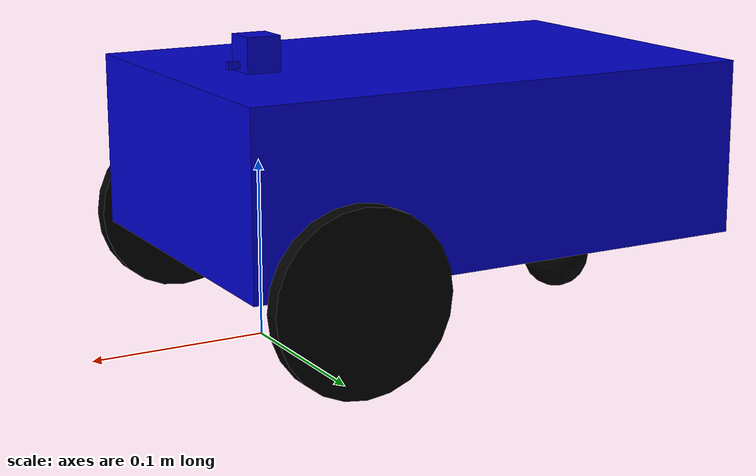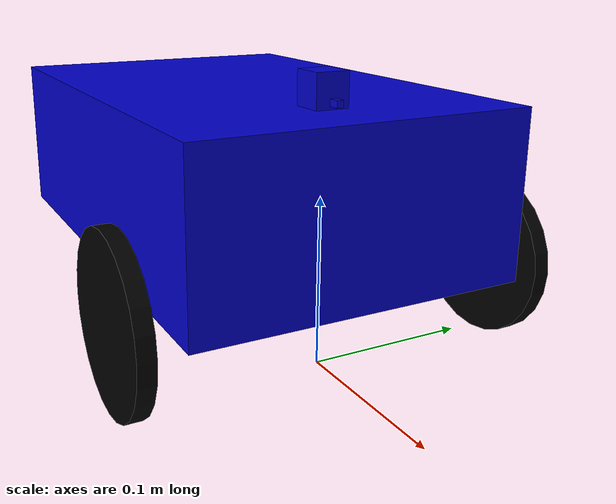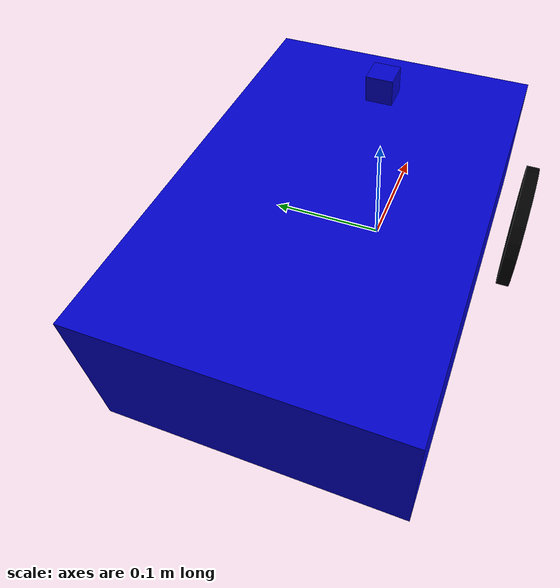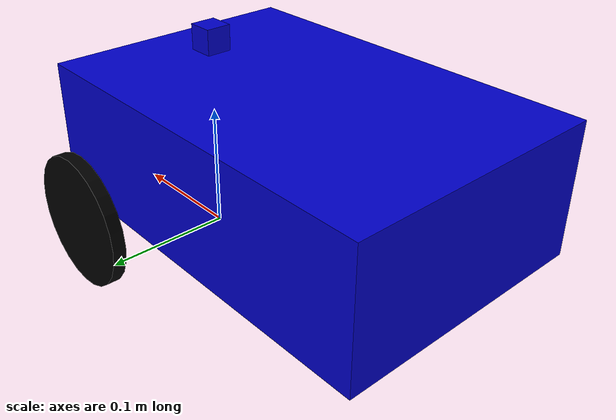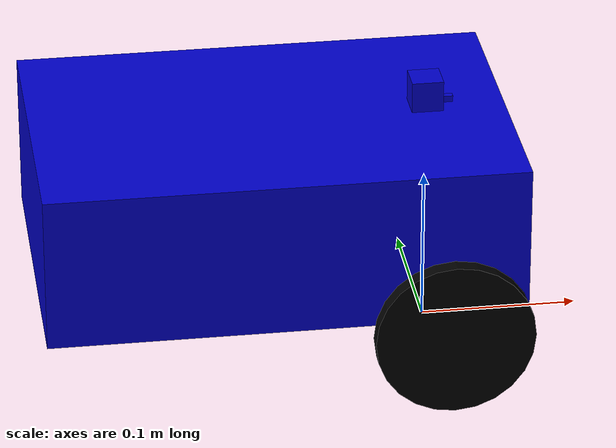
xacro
<?xml version="1.0"?>
<robot xmlns:xacro="http://www.ros.org/wiki/xacro" name="test_robot" >

    <xacro:arg name="namespace" default=""/>

    <xacro:property name="body_len" value="0.3"/>
    <xacro:property name="body_width" value="0.2"/>
    <xacro:property name="body_height" value="0.1"/>
    <xacro:property name="wheel_radius" value="0.05"/>
    <xacro:property name="wheel_width" value="0.01"/>
    <xacro:property name="camera_size" value="0.02"/>

    <link name="base_link" />

    <joint name="zero_joint" type="fixed">
        <parent link="base_link"/>
        <child link="body_link"/>
        <origin xyz="-0.1 0 ${wheel_radius}" rpy="0 0 0"/>
    </joint>

    <link name="body_link">
        <visual>
            <geometry>
                <box size="${body_len} ${body_width} ${body_height}" />
            </geometry>
            <origin xyz="0 0 0.05" rpy="0 0 0"/>
            <material name="blue">
                <color rgba="0 0 .8 1"/>
            </material>
        </visual>
        <collision>
            <geometry>
                <box size="${body_len} ${body_width} ${body_height}" />
            </geometry>
            <origin xyz="0 0 0.05" rpy="0 0 0"/>
        </collision>
        <inertial>
            <mass value="3"/>
            <inertia ixx="1e-4" ixy="0.0" ixz="0.0" iyy="1e-4" iyz="0.0" izz="1e-4"/>
        </inertial>
    </link>

    <xacro:macro name="wheel" params="name dx dy">
        <link name="${name}_link">
            <visual>
                <geometry>
                    <cylinder length="${wheel_width}" radius="${wheel_radius}"/>
                </geometry>
                <origin rpy="${pi/2} 0 0" xyz="0 0 0"/>
                <material name="black">
                    <color rgba="0 0 0 1"/>
                </material>
            </visual>
            <collision>
                <geometry>
                    <cylinder length="${wheel_width}" radius="${wheel_radius}"/>
                </geometry>
                <origin rpy="${pi/2} 0 0" xyz="0 0 0"/>
            </collision>
            <inertial>
                <mass value="0.1"/>
                <inertia izz="1e-5" ixy="0.0" ixz="0.0" ixx="1e-5" iyz="0.0" iyy="1e-5"/>
            </inertial>
        </link>
        <joint name="${name}_j" type="continuous">
            <origin xyz="${dx} ${dy} 0" rpy="0 0 0"/>
            <parent link="body_link"/>
            <axis xyz="0 1 0"/>
            <child link="${name}_link"/>
        </joint>
        <transmission name="${name}_tr">
            <type>transmission_interface/SimpleTransmission</type>
            <joint name="${name}_j">
                <hardwareInterface>hardware_interface/VelocityJointInterface</hardwareInterface>
            </joint>
            <actuator name="${name}_m">
                <hardwareInterface>hardware_interface/VelocityJointInterface</hardwareInterface>
                <mechanicalReduction>1</mechanicalReduction>
            </actuator>
        </transmission>
    </xacro:macro>

    <xacro:wheel name="lwheel" dx="0.1" dy="0.12"  />
    <xacro:wheel name="rwheel" dx="0.1" dy="-0.12"  />

    <link name="caster_link">
        <visual>
            <geometry>
                <sphere radius="0.02"/>
            </geometry>
            <material name="black">
                <color rgba="0 0 0 1"/>
            </material>
        </visual>
        <collision>
            <geometry>
                <sphere radius="0.02"/>
            </geometry>
        </collision>
        <inertial>
            <mass value="0.05"/>
            <inertia izz="1e-5" ixy="0.0" ixz="0.0" ixx="1e-5" iyz="0.0" iyy="1e-5"/>
        </inertial>
    </link>

    <joint name="caster_j" type="fixed">
        <origin xyz="-0.1 0 -0.03" rpy="0 0 0"/>
        <parent link="body_link"/>
        <child link="caster_link"/>
    </joint>

    <gazebo reference="caster_link">
        <mu1>0.01</mu1>
        <mu2>0.01</mu2>
    </gazebo>

    <link name="camera_box">
        <visual>
            <geometry>
                <box size="${camera_size} ${camera_size} ${camera_size}" />
            </geometry>
            <origin xyz="0 0 ${camera_size/2}" rpy="0 0 0"/>
            <material name="blue">
                <color rgba="0 0 .8 1"/>
            </material>
        </visual>
        <collision>
            <geometry>
                <box size="${camera_size} ${camera_size} ${camera_size}" />
            </geometry>
            <origin xyz="0 0 ${camera_size/2 + 0.01}" rpy="0 0 0"/>
        </collision>
        <inertial>
            <mass value="0.1"/>
            <inertia ixx="1e-6" ixy="0.0" ixz="0.0" iyy="1e-6" iyz="0.0" izz="1e-6"/>
        </inertial>
    </link>

    <link name="camera_optical_box">
        <visual>
            <geometry>
                <box size="0 0 0" />
            </geometry>
            <origin xyz="0 0 0" rpy="0 0 0"/>
            <material name="blue">
                <color rgba="0 0 .8 1"/>
            </material>
        </visual>
        <collision>
            <geometry>
                <box size="0 0 0" />
            </geometry>
            <origin xyz="0 0 0" rpy="0 0 0"/>
        </collision>
        <inertial>
            <mass value="0."/>
            <inertia ixx="0.0" ixy="0.0" ixz="0.0" iyy="0.0" iyz="0.0" izz="0.0"/>
        </inertial>
    </link>

    <joint name="camera_optical_j" type="fixed">
        <origin xyz="0 0 0" rpy="-${pi/2} 0 -${pi/2}"/>
        <parent link="camera_box"/>
        <axis xyz="0 0 0"/>
        <child link="camera_optical_box"/>
    </joint>

    <link name="camera_box_tiny">
        <visual>
            <geometry>
                <box size="${camera_size/3} ${camera_size/5} ${camera_size/5}" />
            </geometry>
            <origin xyz="${camera_size/5} 0 ${camera_size/10}" rpy="0 0 0"/>
            <material name="blue">
                <color rgba="0 0 .8 1"/>
            </material>
        </visual>
        <collision>
            <geometry>
                <box size="${camera_size/3} ${camera_size/5} ${camera_size/5}" />
            </geometry>
            <origin xyz="${camera_size/5} 0 ${camera_size/10}" rpy="0 0 0"/>
        </collision>
        <inertial>
            <mass value="0.01"/>
            <inertia ixx="1e-8" ixy="0.0" ixz="0.0" iyy="1e-8" iyz="0.0" izz="1e-8"/>
        </inertial>
    </link>

    <joint name="camera_joint" type="revolute"> <!-- arctic: type="continuous" -->
        <limit lower="${-pi/2}" upper="${pi/2}" effort="1" velocity="1"/>
        <origin xyz="${body_width/2} 0 ${body_height}" rpy="0 0 0"/>
        <parent link="body_link"/>
        <axis xyz="0 0 1"/>
        <child link="camera_box"/>
        <!-- arctic: -->
    </joint>

    <joint name="camera_joint_tiny" type="fixed">
        <origin xyz="${camera_size/2} 0 ${camera_size/10}" rpy="0 0 0"/>
        <parent link="camera_box"/>
        <child link="camera_box_tiny"/>
        <!-- arctic: -->
    </joint>

    <transmission name="camera_tr">
        <type>transmission_interface/SimpleTransmission</type>
        <joint name="camera_joint">
            <hardwareInterface>hardware_interface/PositionJointInterface</hardwareInterface>
        </joint>
        <actuator name="camera_motor">
            <hardwareInterface>hardware_interface/PositionJointInterface</hardwareInterface>
            <mechanicalReduction>1</mechanicalReduction>
        </actuator>
    </transmission>

  <gazebo reference="camera_box">
    <material>Gazebo/Black</material>
    <sensor type="camera" name="camera1">
      <update_rate>30.0</update_rate>
      <camera name="head">
        <horizontal_fov>1.3962634</horizontal_fov>
        <image>
          <width>640</width>
          <height>480</height>
          <format>R8G8B8</format>
        </image>
        <clip>
          <near>0.02</near>
          <far>300</far>
        </clip>
        <noise>
          <type>gaussian</type>
          <!-- Noise is sampled independently per pixel on each frame.
               That pixel's noise value is added to each of its color
               channels, which at that point lie in the range [0,1]. -->
          <mean>0.0</mean>
          <stddev>0.007</stddev>
        </noise>
      </camera>
      <plugin name="camera_controller" filename="libgazebo_ros_camera.so">
        <alwaysOn>true</alwaysOn>
        <updateRate>0.0</updateRate>
        <cameraName>camera1</cameraName>
        <imageTopicName>image_raw</imageTopicName>
        <cameraInfoTopicName>camera_info</cameraInfoTopicName>
        <frameName>camera_optical_box</frameName>
        <hackBaseline>0.07</hackBaseline>
        <distortionK1>0.0</distortionK1>
        <distortionK2>0.0</distortionK2>
        <distortionK3>0.0</distortionK3>
        <distortionT1>0.0</distortionT1>
        <distortionT2>0.0</distortionT2>
      </plugin>
    </sensor>
  </gazebo>

    <gazebo>
        <plugin name="gazebo_ros_control" filename="libgazebo_ros_control.so">
            <robotNamespace>$(arg namespace)</robotNamespace>
        </plugin>
    </gazebo>

</robot>
